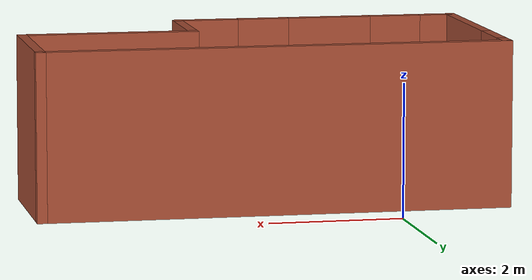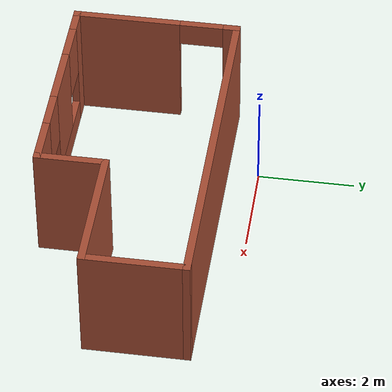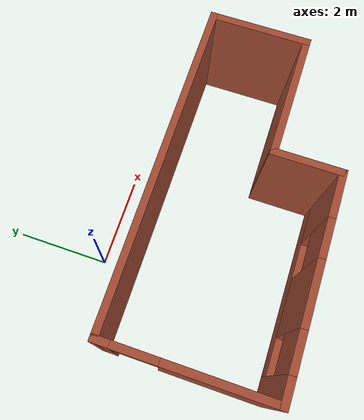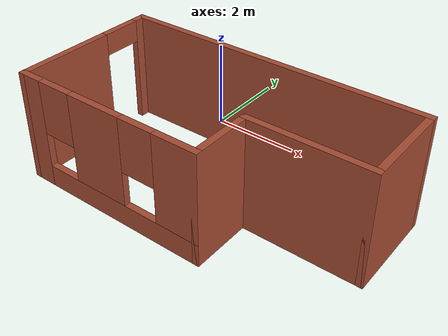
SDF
<?xml version='1.0'?>
<sdf version='1.7'>
  <model name='Office'>
    <pose>1.745 -2.0675 0 0 -0 0</pose>
    <link name='Wall_0'>
      <pose>-3.475 -0.3175 0 0 -0 -1.5708</pose>
      <visual name='Wall_0_Visual_0'>
        <pose>-1.57109 0 1.25 0 -0 0</pose>
        <geometry>
          <box>
            <size>0.357812 0.15 2.5</size>
          </box>
        </geometry>
        <material>
          <script>
            <uri>file://media/materials/scripts/gazebo.material</uri>
            <name>Gazebo/Bricks</name>
          </script>
          <ambient>1 1 1 1</ambient>
        </material>
        <meta>
          <layer>0</layer>
        </meta>
      </visual>
      <collision name='Wall_0_Collision_0'>
        <geometry>
          <box>
            <size>0.357812 0.15 2.5</size>
          </box>
        </geometry>
        <pose>-1.57109 0 1.25 0 -0 0</pose>
      </collision>
      <visual name='Wall_0_Visual_1'>
        <pose>0.628906 0 1.25 0 -0 0</pose>
        <geometry>
          <box>
            <size>2.24219 0.15 2.5</size>
          </box>
        </geometry>
        <material>
          <script>
            <uri>file://media/materials/scripts/gazebo.material</uri>
            <name>Gazebo/Bricks</name>
          </script>
          <ambient>1 1 1 1</ambient>
        </material>
        <meta>
          <layer>0</layer>
        </meta>
      </visual>
      <collision name='Wall_0_Collision_1'>
        <geometry>
          <box>
            <size>2.24219 0.15 2.5</size>
          </box>
        </geometry>
        <pose>0.628906 0 1.25 0 -0 0</pose>
      </collision>
      <visual name='Wall_0_Visual_2'>
        <pose>-0.942188 0 2.25 0 -0 0</pose>
        <geometry>
          <box>
            <size>0.9 0.15 0.5</size>
          </box>
        </geometry>
        <material>
          <script>
            <uri>file://media/materials/scripts/gazebo.material</uri>
            <name>Gazebo/Bricks</name>
          </script>
          <ambient>1 1 1 1</ambient>
        </material>
        <meta>
          <layer>0</layer>
        </meta>
      </visual>
      <collision name='Wall_0_Collision_2'>
        <geometry>
          <box>
            <size>0.9 0.15 0.5</size>
          </box>
        </geometry>
        <pose>-0.942188 0 2.25 0 -0 0</pose>
      </collision>
    </link>
    <link name='Wall_1'>
      <pose>-1.3 -1.9925 0 0 -0 0</pose>
      <visual name='Wall_1_Visual_0'>
        <pose>-1.9575 0 1.25 0 -0 0</pose>
        <geometry>
          <box>
            <size>0.585 0.15 2.5</size>
          </box>
        </geometry>
        <material>
          <script>
            <uri>file://media/materials/scripts/gazebo.material</uri>
            <name>Gazebo/Bricks</name>
          </script>
          <ambient>1 1 1 1</ambient>
        </material>
        <meta>
          <layer>0</layer>
        </meta>
      </visual>
      <collision name='Wall_1_Collision_0'>
        <geometry>
          <box>
            <size>0.585 0.15 2.5</size>
          </box>
        </geometry>
        <pose>-1.9575 0 1.25 0 -0 0</pose>
      </collision>
      <visual name='Wall_1_Visual_1'>
        <pose>0.2925 0 0.25 0 -0 0</pose>
        <geometry>
          <box>
            <size>3.915 0.15 0.5</size>
          </box>
        </geometry>
        <material>
          <script>
            <uri>file://media/materials/scripts/gazebo.material</uri>
            <name>Gazebo/Bricks</name>
          </script>
          <ambient>1 1 1 1</ambient>
        </material>
        <meta>
          <layer>0</layer>
        </meta>
      </visual>
      <collision name='Wall_1_Collision_1'>
        <geometry>
          <box>
            <size>3.915 0.15 0.5</size>
          </box>
        </geometry>
        <pose>0.2925 0 0.25 0 -0 0</pose>
      </collision>
      <visual name='Wall_1_Visual_2'>
        <pose>-0.215 0 1.5 0 -0 0</pose>
        <geometry>
          <box>
            <size>1.3 0.15 2</size>
          </box>
        </geometry>
        <material>
          <script>
            <uri>file://media/materials/scripts/gazebo.material</uri>
            <name>Gazebo/Bricks</name>
          </script>
          <ambient>1 1 1 1</ambient>
        </material>
        <meta>
          <layer>0</layer>
        </meta>
      </visual>
      <collision name='Wall_1_Collision_2'>
        <geometry>
          <box>
            <size>1.3 0.15 2</size>
          </box>
        </geometry>
        <pose>-0.215 0 1.5 0 -0 0</pose>
      </collision>
      <visual name='Wall_1_Visual_3'>
        <pose>1.7425 0 1.5 0 -0 0</pose>
        <geometry>
          <box>
            <size>1.015 0.15 2</size>
          </box>
        </geometry>
        <material>
          <script>
            <uri>file://media/materials/scripts/gazebo.material</uri>
            <name>Gazebo/Bricks</name>
          </script>
          <ambient>1 1 1 1</ambient>
        </material>
        <meta>
          <layer>0</layer>
        </meta>
      </visual>
      <collision name='Wall_1_Collision_3'>
        <geometry>
          <box>
            <size>1.015 0.15 2</size>
          </box>
        </geometry>
        <pose>1.7425 0 1.5 0 -0 0</pose>
      </collision>
      <visual name='Wall_1_Visual_4'>
        <pose>-1.265 0 1.9 0 -0 0</pose>
        <geometry>
          <box>
            <size>0.8 0.15 1.2</size>
          </box>
        </geometry>
        <material>
          <script>
            <uri>file://media/materials/scripts/gazebo.material</uri>
            <name>Gazebo/Bricks</name>
          </script>
          <ambient>1 1 1 1</ambient>
        </material>
        <meta>
          <layer>0</layer>
        </meta>
      </visual>
      <collision name='Wall_1_Collision_4'>
        <geometry>
          <box>
            <size>0.8 0.15 1.2</size>
          </box>
        </geometry>
        <pose>-1.265 0 1.9 0 -0 0</pose>
      </collision>
      <visual name='Wall_1_Visual_5'>
        <pose>0.835 0 1.9 0 -0 0</pose>
        <geometry>
          <box>
            <size>0.8 0.15 1.2</size>
          </box>
        </geometry>
        <material>
          <script>
            <uri>file://media/materials/scripts/gazebo.material</uri>
            <name>Gazebo/Bricks</name>
          </script>
          <ambient>1 1 1 1</ambient>
        </material>
        <meta>
          <layer>0</layer>
        </meta>
      </visual>
      <collision name='Wall_1_Collision_5'>
        <geometry>
          <box>
            <size>0.8 0.15 1.2</size>
          </box>
        </geometry>
        <pose>0.835 0 1.9 0 -0 0</pose>
      </collision>
    </link>
    <link name='Wall_2'>
      <collision name='Wall_2_Collision'>
        <geometry>
          <box>
            <size>1.5 0.15 2.5</size>
          </box>
        </geometry>
        <pose>0 0 1.25 0 -0 0</pose>
      </collision>
      <visual name='Wall_2_Visual'>
        <pose>0 0 1.25 0 -0 0</pose>
        <geometry>
          <box>
            <size>1.5 0.15 2.5</size>
          </box>
        </geometry>
        <material>
          <script>
            <uri>file://media/materials/scripts/gazebo.material</uri>
            <name>Gazebo/Bricks</name>
          </script>
          <ambient>1 1 1 1</ambient>
        </material>
        <meta>
          <layer>0</layer>
        </meta>
      </visual>
      <pose>0.875 -1.3175 0 0 -0 1.5708</pose>
    </link>
    <link name='Wall_4'>
      <collision name='Wall_4_Collision'>
        <geometry>
          <box>
            <size>2.75 0.15 2.5</size>
          </box>
        </geometry>
        <pose>0 0 1.25 0 -0 0</pose>
      </collision>
      <visual name='Wall_4_Visual'>
        <pose>0 0 1.25 0 -0 0</pose>
        <geometry>
          <box>
            <size>2.75 0.15 2.5</size>
          </box>
        </geometry>
        <material>
          <script>
            <uri>file://media/materials/scripts/gazebo.material</uri>
            <name>Gazebo/Bricks</name>
          </script>
          <ambient>1 1 1 1</ambient>
        </material>
        <meta>
          <layer>0</layer>
        </meta>
      </visual>
      <pose>2.175 -0.6425 0 0 -0 0</pose>
    </link>
    <link name='Wall_5'>
      <collision name='Wall_5_Collision'>
        <geometry>
          <box>
            <size>2.15 0.15 2.5</size>
          </box>
        </geometry>
        <pose>0 0 1.25 0 -0 0</pose>
      </collision>
      <visual name='Wall_5_Visual'>
        <pose>0 0 1.25 0 -0 0</pose>
        <geometry>
          <box>
            <size>2.15 0.15 2.5</size>
          </box>
        </geometry>
        <material>
          <script>
            <uri>file://media/materials/scripts/gazebo.material</uri>
            <name>Gazebo/Bricks</name>
          </script>
          <ambient>1 1 1 1</ambient>
        </material>
        <meta>
          <layer>0</layer>
        </meta>
      </visual>
      <pose>3.475 0.3575 0 0 -0 1.5708</pose>
    </link>
    <link name='Wall_6'>
      <collision name='Wall_6_Collision'>
        <geometry>
          <box>
            <size>7.1 0.15 2.5</size>
          </box>
        </geometry>
        <pose>0 0 1.25 0 -0 0</pose>
      </collision>
      <visual name='Wall_6_Visual'>
        <pose>0 0 1.25 0 -0 0</pose>
        <geometry>
          <box>
            <size>7.1 0.15 2.5</size>
          </box>
        </geometry>
        <material>
          <script>
            <uri>file://media/materials/scripts/gazebo.material</uri>
            <name>Gazebo/Bricks</name>
          </script>
          <ambient>1 1 1 1</ambient>
        </material>
        <meta>
          <layer>0</layer>
        </meta>
      </visual>
      <pose>0 1.3575 0 0 -0 3.14159</pose>
    </link>
    <static>1</static>
  </model>
</sdf>
